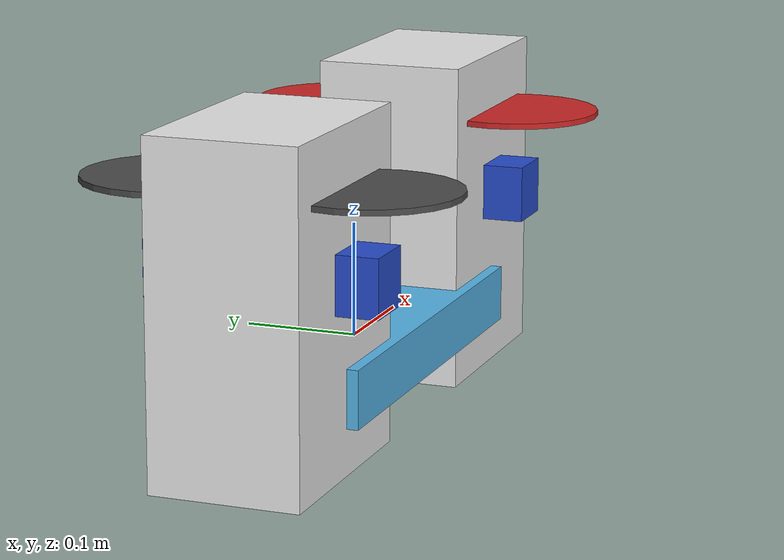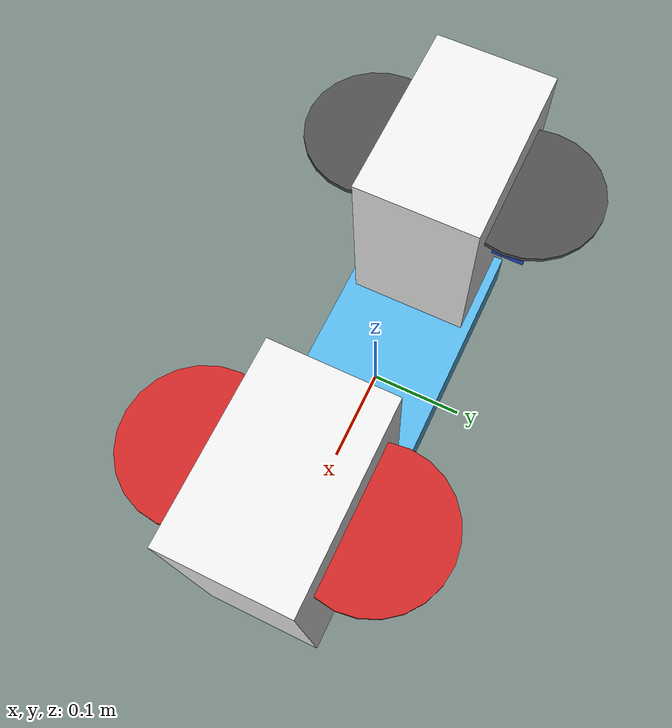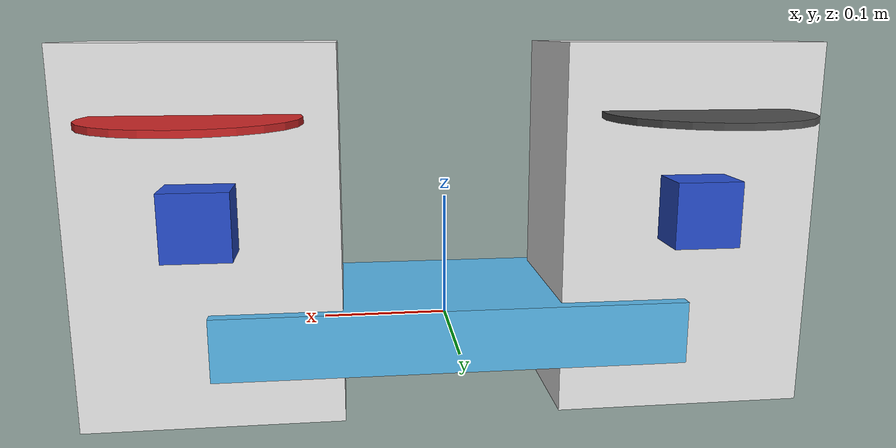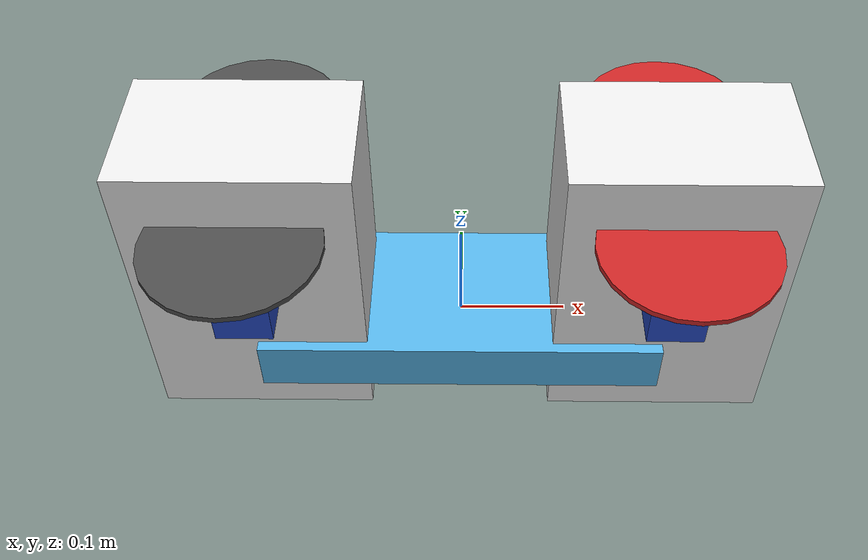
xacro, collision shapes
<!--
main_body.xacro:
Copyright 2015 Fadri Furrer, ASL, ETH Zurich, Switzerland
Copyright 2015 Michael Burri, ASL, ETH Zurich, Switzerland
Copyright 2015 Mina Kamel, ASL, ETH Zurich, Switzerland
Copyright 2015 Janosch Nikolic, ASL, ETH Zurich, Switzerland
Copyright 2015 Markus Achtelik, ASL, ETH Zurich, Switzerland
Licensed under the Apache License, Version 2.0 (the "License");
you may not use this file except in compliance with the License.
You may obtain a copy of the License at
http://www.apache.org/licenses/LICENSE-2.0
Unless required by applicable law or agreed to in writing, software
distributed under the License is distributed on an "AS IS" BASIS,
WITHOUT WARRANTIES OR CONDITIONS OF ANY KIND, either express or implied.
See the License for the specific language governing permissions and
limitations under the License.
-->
<?xml version="1.0"?>

<robot name="final_drone" xmlns:xacro="http://ros.org/wiki/xacro">
  <!-- Properties -->
  <xacro:property name="robot_namespace" value="drone" />
  <xacro:property name="rotor_velocity_slowdown_sim" value="10" />
  <xacro:property name="mesh_file" value="iris.stl" />
  <xacro:property name="mesh_scale" value="1 1 1"/>
  <xacro:property name="mesh_scale_prop" value="1 1 1"/>
  <xacro:property name="mass" value="1.5" /> <!-- [kg] -->
  <xacro:property name="body_length" value="0.37" />
  <xacro:property name="body_width" value="0.15" />
  <xacro:property name="body_height" value="0.05" />

  <xacro:property name="mass_arm" value="0.3" />
  <xacro:property name="arm_length" value="0.203" />
  <xacro:property name="arm_width" value="0.05" />
  <xacro:property name="arm_height" value="0.05" />

  <xacro:property name="mass_stand" value="0.3" />
  <xacro:property name="stand_length" value="0.13" />
  <xacro:property name="stand_width" value="0.2" />
  <xacro:property name="stand_height" value="0.29" />

  <xacro:property name="mass_rotor" value="0.005" /> <!-- [kg] -->
  <xacro:property name="arm_offset_top" value="0.1"/>
  <xacro:property name="arm_length_front_x" value="0.185" />
  <xacro:property name="arm_length_back_x" value="0.185" />
  <xacro:property name="arm_length_front_y" value="0.085" />
  <xacro:property name="arm_length_back_y" value="0.085" />
  <xacro:property name="rotor_offset_top" value="0.072" />
  <xacro:property name="radius_rotor" value="0.0762" />
  <xacro:property name="motor_constant" value="8.54858e-06" /> <!-- [kg.m/s^2] -->
  <xacro:property name="moment_constant" value="0.06" />
  <xacro:property name="time_constant_up" value="0.0125" />
  <xacro:property name="time_constant_down" value="0.025" />
  <xacro:property name="max_rot_velocity" value="1100" /> <!-- [rad/s] -->
  <xacro:property name="sin30" value="0.5" />
  <xacro:property name="cos30" value="0.866025403784" />
  <xacro:property name="sqrt2" value="1.4142135623730951" />
  <xacro:property name="rotor_drag_coefficient" value="8.06428e-04" />
  <xacro:property name="rolling_moment_coefficient" value="0.000001" />
  <xacro:property name="color" value="black" />

  <!-- Property Blocks -->
  <xacro:property name="body_inertia">
    <inertia
    ixx="${1/12 * mass * (body_height * body_height + body_width * body_width)}"
    iyy="${1/12 * mass * (body_height * body_height + body_width * body_width)}"
    izz="${1/12 * mass * (body_width * body_width + body_width * body_width)}"
    ixy="0.0" ixz="0.0" iyz="0.0" /> <!-- [kg.m^2] [kg.m^2] [kg.m^2] [kg.m^2] [kg.m^2] [kg.m^2] -->
  </xacro:property>

  <!-- inertia of a single arm, assuming it is a cuboid. Height=3mm, width=15mm -->
  <xacro:property name="arm_inertia">
    <inertia
    ixx="${1/12 * mass_arm * (arm_height * arm_height + arm_width * arm_width)}"
    iyy="${1/12 * mass_arm * (arm_height * arm_height + arm_width * arm_width)}"
    izz="${1/12 * mass_arm * (arm_width * arm_width + arm_width * arm_width)}"
    ixy="0.0" ixz="0.0" iyz="0.0" /> <!-- [kg.m^2] [kg.m^2] [kg.m^2] [kg.m^2] [kg.m^2] [kg.m^2] -->
  </xacro:property>

    <!-- inertia of a single stand, assuming it is a cuboid. Height=3mm, width=15mm -->
  <xacro:property name="stand_inertia">
    <inertia
    ixx="${1/12 * mass_stand * (stand_height * stand_height + stand_width * stand_width)}"
    iyy="${1/12 * mass_stand * (stand_height * stand_height + stand_width * stand_width)}"
    izz="${1/12 * mass_stand * (stand_width * stand_width + stand_width * stand_width)}"
    ixy="0.0" ixz="0.0" iyz="0.0" /> <!-- [kg.m^2] [kg.m^2] [kg.m^2] [kg.m^2] [kg.m^2] [kg.m^2] -->
  </xacro:property>

  <!-- inertia of a single rotor, assuming it is a cuboid. Height=3mm, width=15mm -->
  <xacro:property name="rotor_inertia">
    <inertia
    ixx="${1/12 * mass_rotor * (0.015 * 0.015 + 0.003 * 0.003) * rotor_velocity_slowdown_sim}"
    iyy="${1/12 * mass_rotor * (4 * radius_rotor * radius_rotor + 0.003 * 0.003) * rotor_velocity_slowdown_sim}"
    izz="${1/12 * mass_rotor * (4 * radius_rotor * radius_rotor + 0.015 * 0.015) * rotor_velocity_slowdown_sim}"
    ixy="0.0" ixz="0.0"  iyz="0.0" /> <!-- [kg.m^2] [kg.m^2] [kg.m^2] [kg.m^2] [kg.m^2] [kg.m^2] -->
  </xacro:property>

  <!-- Included URDF Files -->
  <!--xacro:include filename="$(arg rotors_description_dir)/urdf/multirotor_base.xacro" /-->
  <xacro:include filename="$(find final_drone)/models/final_drone/main_body.xacro" />
  <!--xacro:include filename="/home/ethan/catkin_ws/src/final_drone/models/final_drone/main_body.xacro" /-->

  <!-- Instantiate multirotor_base_macro once -->
  <xacro:multirotor_base_macro
    robot_namespace="${robot_namespace}"
    mass="${mass}"
    body_length="${body_length}"
    body_width="${body_width}"
    body_height="${body_height}"
    mesh_file="${mesh_file}"
    mesh_scale="${mesh_scale}"
    color="${color}"
    >
    <xacro:insert_block name="body_inertia" />
  </xacro:multirotor_base_macro>

  <!-- Instantiate arms -->
  <xacro:arm
    robot_namespace="${robot_namespace}"
    parent="base_link"
    mass_arm="${mass_arm}"
    side="front"
    arm_number="0"
    mesh="arm"
    mesh_scale="${mesh_scale}"
    color="Blue">
    <origin xyz="${arm_length_front_x} 0 ${arm_offset_top}" rpy="0 0 0" />
    <xacro:insert_block name="arm_inertia" />
  </xacro:arm>

  <xacro:arm
    robot_namespace="${robot_namespace}"
    parent="base_link"
    mass_arm="${mass_arm}"
    side="back"
    arm_number="1"
    mesh="arm"
    mesh_scale="${mesh_scale}"
    color="Blue">
    <origin xyz="-${arm_length_front_x} 0 ${arm_offset_top}" rpy="0 0 0" />
    <xacro:insert_block name="arm_inertia" />
  </xacro:arm>

  <!-- Instantiate stands -->
  <xacro:stand
    robot_namespace="${robot_namespace}"
    mass_stand="${mass_stand}"
    stand_direction="front"
    arm_number="0"
    mesh="arm"
    mesh_scale="${mesh_scale}"
    color="white">
    <origin xyz="0 0 -0.02" rpy="0 0 0" />
    <xacro:insert_block name="stand_inertia" />
  </xacro:stand>

  <xacro:stand
    robot_namespace="${robot_namespace}"
    mass_stand="${mass_stand}"
    stand_direction="back"
    arm_number="1"
    mesh="arm"
    mesh_scale="${mesh_scale}"
    color="white">
    <origin xyz="0 0 -0.02" rpy="0 0 0" />
    <xacro:insert_block name="stand_inertia" />
  </xacro:stand>

  <!-- Instantiate rotors -->
  <xacro:vertical_rotor
    robot_namespace="${robot_namespace}"
    arm_number="0"
    suffix="front_right"
    direction="ccw"
    motor_constant="${motor_constant}"
    moment_constant="${moment_constant}"
    parent="base_link"
    mass_rotor="${mass_rotor}"
    radius_rotor="${radius_rotor}"
    time_constant_up="${time_constant_up}"
    time_constant_down="${time_constant_down}"
    max_rot_velocity="${max_rot_velocity}"
    motor_number="0"
    rotor_drag_coefficient="${rotor_drag_coefficient}"
    rolling_moment_coefficient="${rolling_moment_coefficient}"
    mesh="rotor_spinner"
    mesh_scale="${mesh_scale_prop}"
    color="Red">
    <origin xyz="0 -${arm_length_front_y} ${rotor_offset_top}" rpy="0 0 0" />
    <xacro:insert_block name="rotor_inertia" />
  </xacro:vertical_rotor>

  <xacro:vertical_rotor
    robot_namespace="${robot_namespace}"
    arm_number="1"
    suffix="back_left"
    direction="ccw"
    motor_constant="${motor_constant}"
    moment_constant="${moment_constant}"
    parent="base_link"
    mass_rotor="${mass_rotor}"
    radius_rotor="${radius_rotor}"
    time_constant_up="${time_constant_up}"
    time_constant_down="${time_constant_down}"
    max_rot_velocity="${max_rot_velocity}"
    motor_number="1"
    rotor_drag_coefficient="${rotor_drag_coefficient}"
    rolling_moment_coefficient="${rolling_moment_coefficient}"
    mesh="rotor_spinner"
    mesh_scale="${mesh_scale_prop}"
    color="DarkGrey">
    <origin xyz="0 ${arm_length_back_y} ${rotor_offset_top}" rpy="0 0 0" />
    <xacro:insert_block name="rotor_inertia" />
  </xacro:vertical_rotor>

  <xacro:vertical_rotor robot_namespace="${robot_namespace}"
    arm_number="0"
    suffix="front_left"
    direction="cw"
    motor_constant="${motor_constant}"
    moment_constant="${moment_constant}"
    parent="base_link"
    mass_rotor="${mass_rotor}"
    radius_rotor="${radius_rotor}"
    time_constant_up="${time_constant_up}"
    time_constant_down="${time_constant_down}"
    max_rot_velocity="${max_rot_velocity}"
    motor_number="2"
    rotor_drag_coefficient="${rotor_drag_coefficient}"
    rolling_moment_coefficient="${rolling_moment_coefficient}"
    mesh="rotor_spinner"
    mesh_scale="${mesh_scale_prop}"
    color="Red">
    <origin xyz="0 ${arm_length_front_y} ${rotor_offset_top}" rpy="0 0 0" />
    <xacro:insert_block name="rotor_inertia" />
  </xacro:vertical_rotor>

  <xacro:vertical_rotor robot_namespace="${robot_namespace}"
    arm_number="1"
    suffix="back_right"
    direction="cw"
    motor_constant="${motor_constant}"
    moment_constant="${moment_constant}"
    parent="base_link"
    mass_rotor="${mass_rotor}"
    radius_rotor="${radius_rotor}"
    time_constant_up="${time_constant_up}"
    time_constant_down="${time_constant_down}"
    max_rot_velocity="${max_rot_velocity}"
    motor_number="3"
    rotor_drag_coefficient="${rotor_drag_coefficient}"
    rolling_moment_coefficient="${rolling_moment_coefficient}"
    mesh="rotor_spinner"
    mesh_scale="${mesh_scale_prop}"
    color="DarkGrey">
    <origin xyz="0 -${arm_length_back_y} ${rotor_offset_top}" rpy="0 0 0" />
    <xacro:insert_block name="rotor_inertia" />
  </xacro:vertical_rotor>

  <!-- add joint ROS control-->
   <gazebo>
    <plugin name="gazebo_ros_control" filename="libgazebo_ros_control.so">
      <robotNamespace>${robot_namespace}</robotNamespace>
    </plugin>
  </gazebo>

  <transmission name="tran_0">
    <type>transmission_interface/SimpleTransmission</type>
    <joint name="arm_0">
      <hardwareInterface>hardware_interface/EffortJointInterface</hardwareInterface>
    </joint>
    <actuator name="servo_0">
      <hardwareInterface>hardware_interface/EffortJointInterface</hardwareInterface>
      <mechanicalReduction>1</mechanicalReduction>
    </actuator>
  </transmission>

  <transmission name="tran_1">
    <type>transmission_interface/SimpleTransmission</type>
    <joint name="arm_1">
      <hardwareInterface>hardware_interface/EffortJointInterface</hardwareInterface>
    </joint>
    <actuator name="servo_1">
      <hardwareInterface>hardware_interface/EffortJointInterface</hardwareInterface>
      <mechanicalReduction>1</mechanicalReduction>
    </actuator>
  </transmission>

</robot>

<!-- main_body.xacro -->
<robot xmlns:xacro="http://ros.org/wiki/xacro">
  <!-- Main multirotor link -->
  <xacro:macro name="multirotor_base_macro"
    params="robot_namespace mass body_length body_width body_height mesh_file mesh_scale color *inertia">
    <link name="base_link"></link>

    <joint name="base_joint" type="fixed">
      <origin xyz="0 0 0" rpy="0 0 0" />
      <parent link="base_link" />
      <child link="base_link_inertia" />
    </joint>

    <link name="base_link_inertia">
      <inertial>
        <mass value="${mass}" />  <!-- [kg] -->
        <origin xyz="0 0 0" />
        <xacro:insert_block name="inertia" />
      </inertial>

      <visual>
        <origin xyz="0 0 0" rpy="0 0 0" />
        <geometry>
        <!--xacro:include filename="$(arg final_drone_dir)/models/final_drone/main_body.xacro" /-->
          <!--mesh filename="package://rotors_description/meshes/${mesh_file}"
           scale="${mesh_scale}" /-->
          <!--mesh filename="package://final_drone/meshes/main_body_part.STL"
           scale="${mesh_scale}" /-->
          <mesh filename="$(find final_drone)/models/final_drone/meshes/main_body_part.STL"
            scale="${mesh_scale}" />

        </geometry>
      </visual>

      <collision>
        <origin xyz="0 0 0" rpy="0 0 0" />
        <geometry>
          <box size="${body_length} ${body_width} ${body_height}" />
        </geometry>
      </collision>
    </link>

    <!-- attach multirotor_base_plugin to the base_link -->
    <gazebo>
      <plugin filename="libgazebo_multirotor_base_plugin.so" name="rosbag">
        <robotNamespace>${robot_namespace}</robotNamespace>
        <linkName>base_link</linkName>
        <rotorVelocitySlowdownSim>${rotor_velocity_slowdown_sim}</rotorVelocitySlowdownSim>
      </plugin>
    </gazebo>
    <gazebo reference="base_link">
      <material>Gazebo/${color}</material>
      <collision name='base_link_inertia_collision'>
        <surface>
          <contact>
            <ode>
              <min_depth>0.001</min_depth>
              <max_vel>0.0</max_vel>
            </ode>
          </contact>
          <friction>
            <ode/>
          </friction>
        </surface>
      </collision>
   </gazebo>
  </xacro:macro>

    <!-- arm joint and link -->
  <xacro:macro name="arm"
    params="robot_namespace side parent arm_number mass_arm color mesh mesh_scale *origin *inertia">
    <joint name="arm_${arm_number}" type="continuous">
      <xacro:insert_block name="origin" />
      <axis xyz="0 0 1" />
      <parent link="${parent}" />
      <child link="arm_${arm_number}" />
      <dynamics damping="0.3"/>
    </joint>

    <link name="arm_${arm_number}">
      <mu1>0.5</mu1>
      <mu2>0.5</mu2>
      <inertial>
        <mass value="${mass_arm}" /> <!-- [kg] -->
        <xacro:insert_block name="inertia" />
      </inertial>
      <visual>
        <geometry>
          <!--mesh filename="package://final_drone/meshes/rotor_arm_part.STL"
           scale="${mesh_scale}" /-->
          <mesh filename="$(find final_drone)/models/final_drone/meshes/rotor_arm_part_${side}.STL"
            scale="${mesh_scale}" />
        </geometry>
      </visual>
      <collision>
        <geometry>
          <box size="${arm_width} ${arm_length} ${arm_height}" />
        </geometry>
      </collision>
    </link>
    <gazebo reference="arm_${arm_number}">
      <material>Gazebo/${color}</material>
    </gazebo>
  </xacro:macro>

  <!-- stand joint and link -->
  <xacro:macro name="stand"
    params="robot_namespace arm_number stand_direction mass_stand color mesh mesh_scale *origin *inertia">
    <joint name="stand_${stand_direction}" type="fixed">
      <xacro:insert_block name="origin" />
      <axis xyz="0 0 1" />
      <parent link="arm_${arm_number}" />
      <child link="stand_${stand_direction}" />
    </joint>

    <link name="stand_${stand_direction}">
      <inertial>
        <mass value="${mass_stand}" /> <!-- [kg] -->
        <xacro:insert_block name="inertia" />
      </inertial>
      <visual>
        <geometry>
          <!--mesh filename="package://final_drone/meshes/rotor_arm_part.STL"
           scale="${mesh_scale}" /-->
          <mesh filename="$(find final_drone)/models/final_drone/meshes/stand_${stand_direction}.stl"
            scale="${mesh_scale}" />
        </geometry>
      </visual>
      <collision>
        <geometry>
          <box size="${stand_width} ${stand_length} ${stand_height}" />
        </geometry>
      </collision>
    </link>
    <gazebo reference="stand_${stand_direction}">
      <material>Gazebo/${color}</material>
    </gazebo>
  </xacro:macro>

  <!-- Rotor joint and link -->
  <xacro:macro name="vertical_rotor"
    params="robot_namespace parent suffix direction motor_constant moment_constant arm_number mass_rotor radius_rotor time_constant_up time_constant_down max_rot_velocity motor_number rotor_drag_coefficient rolling_moment_coefficient color mesh mesh_scale *origin *inertia">
    <joint name="rotor_${motor_number}_joint" type="continuous">
      <xacro:insert_block name="origin" />
      <axis xyz="0 0 1" />
      <!-- TODO(ff): not currently set because it's not yet supported -->
      <parent link="arm_${arm_number}" />
      <child link="rotor_${motor_number}" />

    </joint>
    <!-- TODO(ff): not currently set because it's not yet supported -->
    <link name="rotor_${motor_number}">
      <inertial>
        <mass value="${mass_rotor}" /> <!-- [kg] -->
        <xacro:insert_block name="inertia" />
      </inertial>
      <visual>
        <geometry>

          <!-- mesh filename="package://final_drone/meshes/${mesh}_${direction}.dae"-->
          <mesh filename="$(find final_drone)/models/final_drone/meshes/${mesh}.STL"
             scale="${mesh_scale}"/>
        </geometry>
      </visual>
      <collision>
        <geometry>
          <cylinder length="0.005" radius="${radius_rotor}" />
        </geometry>
      </collision>
    </link>
    <gazebo>
      <plugin name="${suffix}_motor_model" filename="libgazebo_motor_model_gdp2020.so"> <!-- Amended to use the GDP2020_ADD motor plugin. -Tai Ming- -->
        <robotNamespace>${robot_namespace}</robotNamespace>
        <jointName>rotor_${motor_number}_joint</jointName>
        <linkName>rotor_${motor_number}</linkName>
        <turningDirection>${direction}</turningDirection>
        <timeConstantUp>${time_constant_up}</timeConstantUp>
        <timeConstantDown>${time_constant_down}</timeConstantDown>
        <maxRotVelocity>${max_rot_velocity}</maxRotVelocity>
        <motorConstant>${motor_constant}</motorConstant>
        <momentConstant>${moment_constant}</momentConstant>
        <commandSubTopic>/gazebo/command/motor_speed</commandSubTopic>
        <motorNumber>${motor_number}</motorNumber>
        <rotorDragCoefficient>${rotor_drag_coefficient}</rotorDragCoefficient>
        <rollingMomentCoefficient>${rolling_moment_coefficient}</rollingMomentCoefficient>
        <motorSpeedPubTopic>/motor_speed/${motor_number}</motorSpeedPubTopic>
        <rotorVelocitySlowdownSim>${rotor_velocity_slowdown_sim}</rotorVelocitySlowdownSim>
      </plugin>
    </gazebo>
    <gazebo reference="rotor_${motor_number}">
      <material>Gazebo/${color}</material>
    </gazebo>
  </xacro:macro>

</robot>
